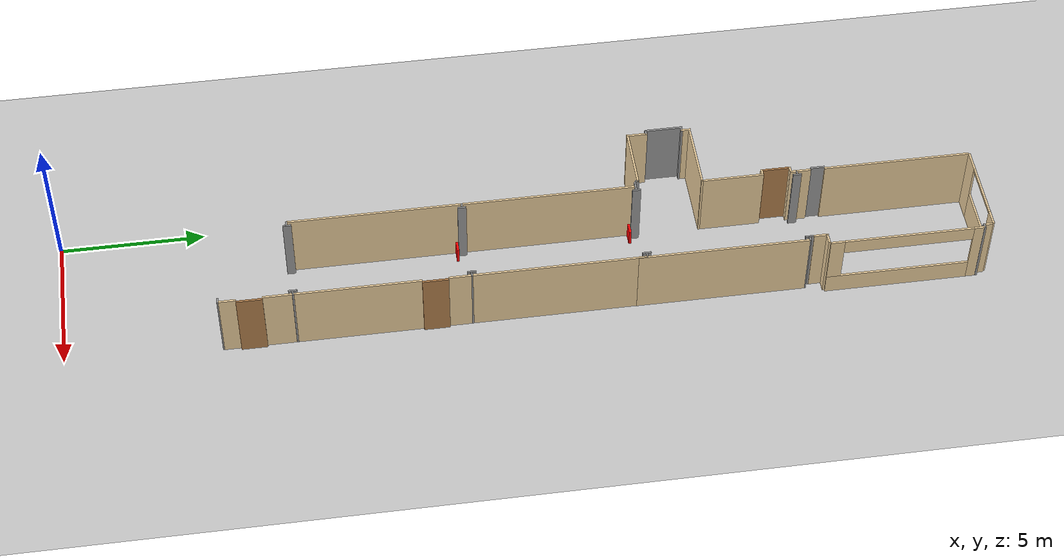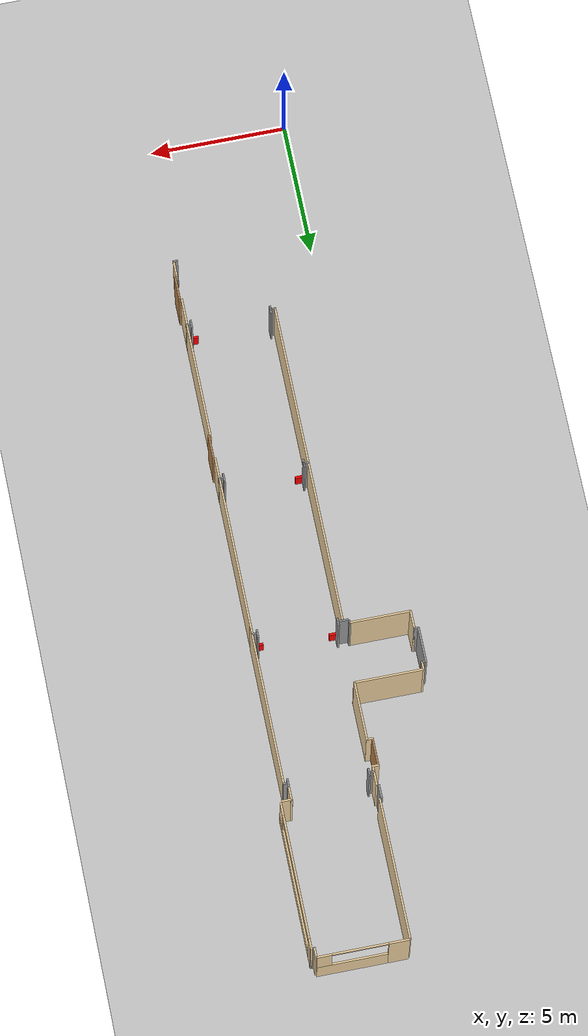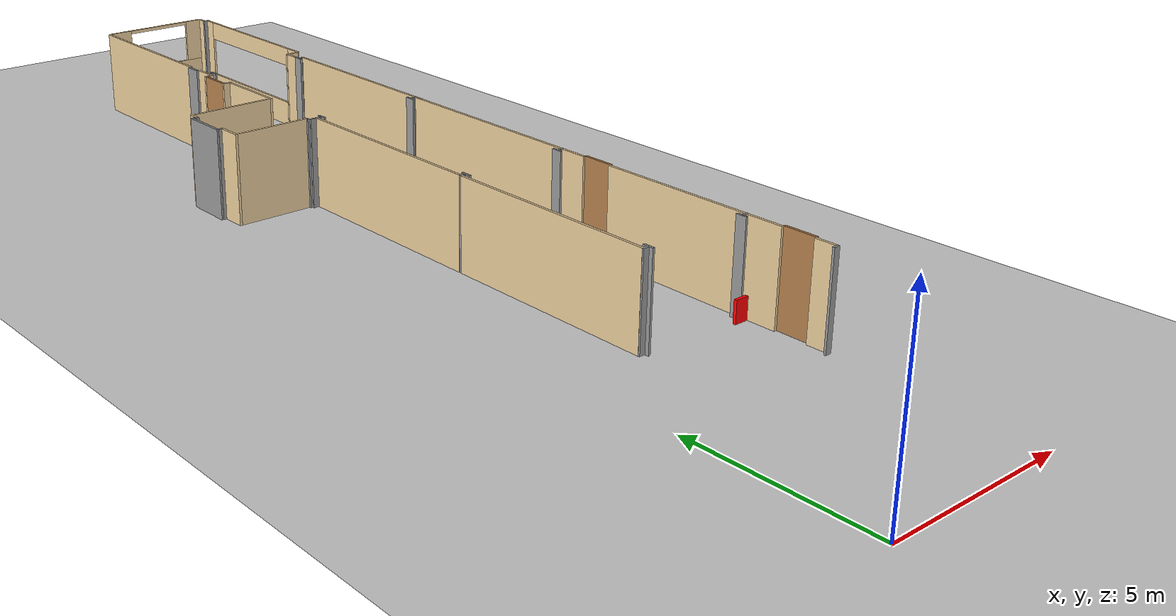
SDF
<sdf version="1.7">
 <world name="default">
  <model name="ground_plane">
   <static>1</static>
   <link name="link">
    <collision name="collision">
     <geometry><plane><normal>0 0 1</normal><size>100 100</size></plane></geometry>
     <surface>
      <contact><collide_bitmask>65535</collide_bitmask></contact>
      <friction><ode><mu>100</mu><mu2>50</mu2></ode></friction>
     </surface>
    </collision>
    <visual name="visual">
     <cast_shadows>0</cast_shadows>
     <geometry><plane><normal>0 0 1</normal><size>100 100</size></plane></geometry>
     <material>
      <script><uri>file://media/materials/scripts/gazebo.material</uri><name>Gazebo/Grey</name></script>
     </material>
    </visual>
   </link>
  </model>
  <model name="Fakulte_koridor">
   <pose>-0.108629 -0.105707 0 0 -0 0</pose>
   <link name="Wall_100">
    <collision name="Wall_100_Collision">
     <geometry><box><size>0.3 0.06 2.5</size></box></geometry>
     <pose>0 0 1.25 0 -0 0</pose>
    </collision>
    <visual name="Wall_100_Visual">
     <pose>0 0 1.25 0 -0 0</pose>
     <geometry><box><size>0.3 0.06 2.5</size></box></geometry>
     <material>
      <script><uri>file://media/materials/scripts/gazebo.material</uri><name>Gazebo/Grey</name></script>
      <ambient>0.180392 0.203922 0.211765 1</ambient>
     </material>
     <meta><layer>0</layer></meta>
    </visual>
    <pose>5.11163 14.0287 0 0 -0 -1.5708</pose>
   </link>
   <link name="Wall_102">
    <collision name="Wall_102_Collision">
     <geometry><box><size>5.965 0.07 2.5</size></box></geometry>
     <pose>0 0 1.25 0 -0 0</pose>
    </collision>
    <visual name="Wall_102_Visual">
     <pose>0 0 1.25 0 -0 0</pose>
     <geometry><box><size>5.965 0.07 2.5</size></box></geometry>
     <material>
      <script><uri>file://media/materials/scripts/gazebo.material</uri><name>Gazebo/Grey</name></script>
      <ambient>0.921569 0.807843 0.615686 1</ambient>
     </material>
     <meta><layer>0</layer></meta>
    </visual>
    <pose>5.27021 17.0333 0 0 -0 -1.5708</pose>
   </link>
   <link name="Wall_104">
    <collision name="Wall_104_Collision">
     <geometry><box><size>0.175 0.06 2.5</size></box></geometry>
     <pose>0 0 1.25 0 -0 0</pose>
    </collision>
    <visual name="Wall_104_Visual">
     <pose>0 0 1.25 0 -0 0</pose>
     <geometry><box><size>0.175 0.06 2.5</size></box></geometry>
     <material>
      <script><uri>file://media/materials/scripts/gazebo.material</uri><name>Gazebo/Grey</name></script>
      <ambient>0.180392 0.203922 0.211765 1</ambient>
     </material>
     <meta><layer>0</layer></meta>
    </visual>
    <pose>5.21005 19.996 0 0 -0 0</pose>
   </link>
   <link name="Wall_106">
    <collision name="Wall_106_Collision">
     <geometry><box><size>0.3 0.06 2.5</size></box></geometry>
     <pose>0 0 1.25 0 -0 0</pose>
    </collision>
    <visual name="Wall_106_Visual">
     <pose>0 0 1.25 0 -0 0</pose>
     <geometry><box><size>0.3 0.06 2.5</size></box></geometry>
     <material>
      <script><uri>file://media/materials/scripts/gazebo.material</uri><name>Gazebo/Grey</name></script>
      <ambient>0.180392 0.203922 0.211765 1</ambient>
     </material>
     <meta><layer>0</layer></meta>
    </visual>
    <pose>5.08827 20.0046 0 0 -0 -1.5708</pose>
   </link>
   <link name="Wall_108">
    <collision name="Wall_108_Collision">
     <geometry><box><size>5.895 0.07 2.5</size></box></geometry>
     <pose>0 0 1.25 0 -0 0</pose>
    </collision>
    <visual name="Wall_108_Visual">
     <pose>0 0 1.25 0 -0 0</pose>
     <geometry><box><size>5.895 0.07 2.5</size></box></geometry>
     <material>
      <script><uri>file://media/materials/scripts/gazebo.material</uri><name>Gazebo/Grey</name></script>
      <ambient>0.921569 0.807843 0.615686 1</ambient>
     </material>
     <meta><layer>0</layer></meta>
    </visual>
    <pose>5.27802 22.6416 0 0 -0 -1.5708</pose>
   </link>
   <link name="Wall_110">
    <collision name="Wall_110_Collision">
     <geometry><box><size>0.175 0.06 2.5</size></box></geometry>
     <pose>0 0 1.25 0 -0 0</pose>
    </collision>
    <visual name="Wall_110_Visual">
     <pose>0 0 1.25 0 -0 0</pose>
     <geometry><box><size>0.175 0.06 2.5</size></box></geometry>
     <material>
      <script><uri>file://media/materials/scripts/gazebo.material</uri><name>Gazebo/Grey</name></script>
      <ambient>0.180392 0.203922 0.211765 1</ambient>
     </material>
     <meta><layer>0</layer></meta>
    </visual>
    <pose>5.21975 25.6028 0 0 -0 0</pose>
   </link>
   <link name="Wall_112">
    <collision name="Wall_112_Collision">
     <geometry><box><size>0.3 0.06 2.5</size></box></geometry>
     <pose>0 0 1.25 0 -0 0</pose>
    </collision>
    <visual name="Wall_112_Visual">
     <pose>0 0 1.25 0 -0 0</pose>
     <geometry><box><size>0.3 0.06 2.5</size></box></geometry>
     <material>
      <script><uri>file://media/materials/scripts/gazebo.material</uri><name>Gazebo/Grey</name></script>
      <ambient>0.180392 0.203922 0.211765 1</ambient>
     </material>
     <meta><layer>0</layer></meta>
    </visual>
    <pose>5.11751 25.6043 0 0 -0 -1.5708</pose>
   </link>
   <link name="Wall_114">
    <collision name="Wall_114_Collision">
     <geometry><box><size>0.505 0.07 2.5</size></box></geometry>
     <pose>0 0 1.25 0 -0 0</pose>
    </collision>
    <visual name="Wall_114_Visual">
     <pose>0 0 1.25 0 -0 0</pose>
     <geometry><box><size>0.505 0.07 2.5</size></box></geometry>
     <material>
      <script><uri>file://media/materials/scripts/gazebo.material</uri><name>Gazebo/Grey</name></script>
      <ambient>0.921569 0.807843 0.615686 1</ambient>
     </material>
     <meta><layer>0</layer></meta>
    </visual>
    <pose>5.1239 26.0091 0 0 -0 -1.5708</pose>
   </link>
   <link name="Wall_118">
    <collision name="Wall_118_Collision">
     <geometry><box><size>0.4 0.07 2.5</size></box></geometry>
     <pose>0 0 1.25 0 -0 0</pose>
    </collision>
    <visual name="Wall_118_Visual">
     <pose>0 0 1.25 0 -0 0</pose>
     <geometry><box><size>0.4 0.07 2.5</size></box></geometry>
     <material>
      <script><uri>file://media/materials/scripts/gazebo.material</uri><name>Gazebo/Grey</name></script>
      <ambient>0.921569 0.807843 0.615686 1</ambient>
     </material>
     <meta><layer>0</layer></meta>
    </visual>
    <pose>5.28591 26.2172 0 0 -0 0</pose>
   </link>
   <link name="Wall_120">
    <pose>5.5144 28.9535 0 0 -0 -1.5708</pose>
    <visual name="Wall_120_Visual_0">
     <pose>-2.49861 0 1.25 0 -0 0</pose>
     <geometry><box><size>0.407786 0.07 2.5</size></box></geometry>
     <material>
      <script><uri>file://media/materials/scripts/gazebo.material</uri><name>Gazebo/Grey</name></script>
      <ambient>0.921569 0.807843 0.615686 1</ambient>
     </material>
     <meta><layer>0</layer></meta>
    </visual>
    <collision name="Wall_120_Collision_0">
     <geometry><box><size>0.407786 0.07 2.5</size></box></geometry>
     <pose>-2.49861 0 1.25 0 -0 0</pose>
    </collision>
    <visual name="Wall_120_Visual_1">
     <pose>0.203893 0 0.375 0 -0 0</pose>
     <geometry><box><size>4.99721 0.07 0.75</size></box></geometry>
     <material>
      <script><uri>file://media/materials/scripts/gazebo.material</uri><name>Gazebo/Grey</name></script>
      <ambient>0.921569 0.807843 0.615686 1</ambient>
     </material>
     <meta><layer>0</layer></meta>
    </visual>
    <collision name="Wall_120_Collision_1">
     <geometry><box><size>4.99721 0.07 0.75</size></box></geometry>
     <pose>0.203893 0 0.375 0 -0 0</pose>
    </collision>
    <visual name="Wall_120_Visual_2">
     <pose>2.45389 0 1.625 0 -0 0</pose>
     <geometry><box><size>0.497214 0.07 1.75</size></box></geometry>
     <material>
      <script><uri>file://media/materials/scripts/gazebo.material</uri><name>Gazebo/Grey</name></script>
      <ambient>0.921569 0.807843 0.615686 1</ambient>
     </material>
     <meta><layer>0</layer></meta>
    </visual>
    <collision name="Wall_120_Collision_2">
     <geometry><box><size>0.497214 0.07 1.75</size></box></geometry>
     <pose>2.45389 0 1.625 0 -0 0</pose>
    </collision>
    <visual name="Wall_120_Visual_3">
     <pose>-0.044714 0 2.225 0 -0 0</pose>
     <geometry><box><size>4.5 0.07 0.55</size></box></geometry>
     <material>
      <script><uri>file://media/materials/scripts/gazebo.material</uri><name>Gazebo/Grey</name></script>
      <ambient>0.921569 0.807843 0.615686 1</ambient>
     </material>
     <meta><layer>0</layer></meta>
    </visual>
    <collision name="Wall_120_Collision_3">
     <geometry><box><size>4.5 0.07 0.55</size></box></geometry>
     <pose>-0.044714 0 2.225 0 -0 0</pose>
    </collision>
   </link>
   <link name="Wall_122">
    <collision name="Wall_122_Collision">
     <geometry><box><size>0.195 0.07 2.5</size></box></geometry>
     <pose>0 0 1.25 0 -0 0</pose>
    </collision>
    <visual name="Wall_122_Visual">
     <pose>0 0 1.25 0 -0 0</pose>
     <geometry><box><size>0.195 0.07 2.5</size></box></geometry>
     <material>
      <script><uri>file://media/materials/scripts/gazebo.material</uri><name>Gazebo/Grey</name></script>
      <ambient>1 1 1 1</ambient>
     </material>
     <meta><layer>0</layer></meta>
    </visual>
    <pose>5.4612 31.621 0 0 -0 0</pose>
   </link>
   <link name="Wall_124">
    <collision name="Wall_124_Collision">
     <geometry><box><size>0.32 0.07 2.5</size></box></geometry>
     <pose>0 0 1.25 0 -0 0</pose>
    </collision>
    <visual name="Wall_124_Visual">
     <pose>0 0 1.25 0 -0 0</pose>
     <geometry><box><size>0.32 0.07 2.5</size></box></geometry>
     <material>
      <script><uri>file://media/materials/scripts/gazebo.material</uri><name>Gazebo/Grey</name></script>
      <ambient>0.921569 0.807843 0.615686 1</ambient>
     </material>
     <meta><layer>0</layer></meta>
    </visual>
    <pose>5.40314 31.7556 0 0 -0 -1.5708</pose>
   </link>
   <link name="Wall_126">
    <pose>3.74779 31.9519 0 0 -0 0</pose>
    <visual name="Wall_126_Visual_0">
     <pose>-1.26795 0 1.25 0 -0 0</pose>
     <geometry><box><size>0.743101 0.07 2.5</size></box></geometry>
     <material>
      <script><uri>file://media/materials/scripts/gazebo.material</uri><name>Gazebo/Grey</name></script>
      <ambient>0.921569 0.807843 0.615686 1</ambient>
     </material>
     <meta><layer>0</layer></meta>
    </visual>
    <collision name="Wall_126_Collision_0">
     <geometry><box><size>0.743101 0.07 2.5</size></box></geometry>
     <pose>-1.26795 0 1.25 0 -0 0</pose>
    </collision>
    <visual name="Wall_126_Visual_1">
     <pose>0.37155 0 0.6 0 -0 0</pose>
     <geometry><box><size>2.5359 0.07 1.2</size></box></geometry>
     <material>
      <script><uri>file://media/materials/scripts/gazebo.material</uri><name>Gazebo/Grey</name></script>
      <ambient>0.921569 0.807843 0.615686 1</ambient>
     </material>
     <meta><layer>0</layer></meta>
    </visual>
    <collision name="Wall_126_Collision_1">
     <geometry><box><size>2.5359 0.07 1.2</size></box></geometry>
     <pose>0.37155 0 0.6 0 -0 0</pose>
    </collision>
    <visual name="Wall_126_Visual_2">
     <pose>1.37155 0 1.85 0 -0 0</pose>
     <geometry><box><size>0.535899 0.07 1.3</size></box></geometry>
     <material>
      <script><uri>file://media/materials/scripts/gazebo.material</uri><name>Gazebo/Grey</name></script>
      <ambient>0.921569 0.807843 0.615686 1</ambient>
     </material>
     <meta><layer>0</layer></meta>
    </visual>
    <collision name="Wall_126_Collision_2">
     <geometry><box><size>0.535899 0.07 1.3</size></box></geometry>
     <pose>1.37155 0 1.85 0 -0 0</pose>
    </collision>
    <visual name="Wall_126_Visual_3">
     <pose>0.103601 0 2.45 0 -0 0</pose>
     <geometry><box><size>2 0.07 0.1</size></box></geometry>
     <material>
      <script><uri>file://media/materials/scripts/gazebo.material</uri><name>Gazebo/Grey</name></script>
      <ambient>0.921569 0.807843 0.615686 1</ambient>
     </material>
     <meta><layer>0</layer></meta>
    </visual>
    <collision name="Wall_126_Collision_3">
     <geometry><box><size>2 0.07 0.1</size></box></geometry>
     <pose>0.103601 0 2.45 0 -0 0</pose>
    </collision>
   </link>
   <link name="Wall_128">
    <collision name="Wall_128_Collision">
     <geometry><box><size>5.145 0.07 2.5</size></box></geometry>
     <pose>0 0 1.25 0 -0 0</pose>
    </collision>
    <visual name="Wall_128_Visual">
     <pose>0 0 1.25 0 -0 0</pose>
     <geometry><box><size>5.145 0.07 2.5</size></box></geometry>
     <material>
      <script><uri>file://media/materials/scripts/gazebo.material</uri><name>Gazebo/Grey</name></script>
      <ambient>0.921569 0.807843 0.615686 1</ambient>
     </material>
     <meta><layer>0</layer></meta>
    </visual>
    <pose>2.09688 29.3576 0 0 -0 -1.5708</pose>
   </link>
   <link name="Wall_130">
    <collision name="Wall_130_Collision">
     <geometry><box><size>0.495 0.07 2.5</size></box></geometry>
     <pose>0 0 1.25 0 -0 0</pose>
    </collision>
    <visual name="Wall_130_Visual">
     <pose>0 0 1.25 0 -0 0</pose>
     <geometry><box><size>0.495 0.07 2.5</size></box></geometry>
     <material>
      <script><uri>file://media/materials/scripts/gazebo.material</uri><name>Gazebo/Grey</name></script>
      <ambient>0.729412 0.741176 0.713726 1</ambient>
     </material>
     <meta><layer>0</layer></meta>
    </visual>
    <pose>2.03085 26.5424 0 0 -0 -1.5708</pose>
   </link>
   <link name="Wall_132">
    <collision name="Wall_132_Collision">
     <geometry><box><size>0.745 0.07 2.5</size></box></geometry>
     <pose>0 0 1.25 0 -0 0</pose>
    </collision>
    <visual name="Wall_132_Visual">
     <pose>0 0 1.25 0 -0 0</pose>
     <geometry><box><size>0.745 0.07 2.5</size></box></geometry>
     <material>
      <script><uri>file://media/materials/scripts/gazebo.material</uri><name>Gazebo/Grey</name></script>
      <ambient>0.921569 0.807843 0.615686 1</ambient>
     </material>
     <meta><layer>0</layer></meta>
    </visual>
    <pose>2.09827 25.9291 0 0 -0 -1.5708</pose>
   </link>
   <link name="Wall_134">
    <collision name="Wall_134_Collision">
     <geometry><box><size>0.175 0.06 2.5</size></box></geometry>
     <pose>0 0 1.25 0 -0 0</pose>
    </collision>
    <visual name="Wall_134_Visual">
     <pose>0 0 1.25 0 -0 0</pose>
     <geometry><box><size>0.175 0.06 2.5</size></box></geometry>
     <material>
      <script><uri>file://media/materials/scripts/gazebo.material</uri><name>Gazebo/Grey</name></script>
      <ambient>0.180392 0.203922 0.211765 1</ambient>
     </material>
     <meta><layer>0</layer></meta>
    </visual>
    <pose>2.15167 25.7938 0 0 -0 0</pose>
   </link>
   <link name="Wall_136">
    <collision name="Wall_136_Collision">
     <geometry><box><size>0.3 0.06 2.5</size></box></geometry>
     <pose>0 0 1.25 0 -0 0</pose>
    </collision>
    <visual name="Wall_136_Visual">
     <pose>0 0 1.25 0 -0 0</pose>
     <geometry><box><size>0.3 0.06 2.5</size></box></geometry>
     <material>
      <script><uri>file://media/materials/scripts/gazebo.material</uri><name>Gazebo/Grey</name></script>
      <ambient>0.180392 0.203922 0.211765 1</ambient>
     </material>
     <meta><layer>0</layer></meta>
    </visual>
    <pose>2.268 25.7827 0 0 -0 -1.5708</pose>
   </link>
   <link name="Wall_138">
    <collision name="Wall_138_Collision">
     <geometry><box><size>0.262 0.07 2.5</size></box></geometry>
     <pose>0 0 1.25 0 -0 0</pose>
    </collision>
    <visual name="Wall_138_Visual">
     <pose>0 0 1.25 0 -0 0</pose>
     <geometry><box><size>0.262 0.07 2.5</size></box></geometry>
     <material>
      <script><uri>file://media/materials/scripts/gazebo.material</uri><name>Gazebo/Grey</name></script>
      <ambient>0.921569 0.807843 0.615686 1</ambient>
     </material>
     <meta><layer>0</layer></meta>
    </visual>
    <pose>2.00137 25.5882 0 0 -0 3.14159</pose>
   </link>
   <link name="Wall_140">
    <collision name="Wall_140_Collision">
     <geometry><box><size>0.933 0.07 2.5</size></box></geometry>
     <pose>0 0 1.25 0 -0 0</pose>
    </collision>
    <visual name="Wall_140_Visual">
     <pose>0 0 1.25 0 -0 0</pose>
     <geometry><box><size>0.933 0.07 2.5</size></box></geometry>
     <material>
      <script><uri>file://media/materials/scripts/gazebo.material</uri><name>Gazebo/Wood</name></script>
      <ambient>1 1 1 1</ambient>
     </material>
     <meta><layer>0</layer></meta>
    </visual>
    <pose>1.90607 25.0907 0 0 -0 -1.5708</pose>
   </link>
   <link name="Wall_142">
    <collision name="Wall_142_Collision">
     <geometry><box><size>0.262 0.07 2.5</size></box></geometry>
     <pose>0 0 1.25 0 -0 0</pose>
    </collision>
    <visual name="Wall_142_Visual">
     <pose>0 0 1.25 0 -0 0</pose>
     <geometry><box><size>0.262 0.07 2.5</size></box></geometry>
     <material>
      <script><uri>file://media/materials/scripts/gazebo.material</uri><name>Gazebo/Grey</name></script>
      <ambient>0.921569 0.807843 0.615686 1</ambient>
     </material>
     <meta><layer>0</layer></meta>
    </visual>
    <pose>2.00059 24.593 0 0 -0 0</pose>
   </link>
   <link name="Wall_144">
    <collision name="Wall_144_Collision">
     <geometry><box><size>2.203 0.07 2.5</size></box></geometry>
     <pose>0 0 1.25 0 -0 0</pose>
    </collision>
    <visual name="Wall_144_Visual">
     <pose>0 0 1.25 0 -0 0</pose>
     <geometry><box><size>2.203 0.07 2.5</size></box></geometry>
     <material>
      <script><uri>file://media/materials/scripts/gazebo.material</uri><name>Gazebo/Grey</name></script>
      <ambient>0.921569 0.807843 0.615686 1</ambient>
     </material>
     <meta><layer>0</layer></meta>
    </visual>
    <pose>2.09965 23.523 0 0 -0 -1.5708</pose>
   </link>
   <link name="Wall_146">
    <collision name="Wall_146_Collision">
     <geometry><box><size>2.483 0.07 2.5</size></box></geometry>
     <pose>0 0 1.25 0 -0 0</pose>
    </collision>
    <visual name="Wall_146_Visual">
     <pose>0 0 1.25 0 -0 0</pose>
     <geometry><box><size>2.483 0.07 2.5</size></box></geometry>
     <material>
      <script><uri>file://media/materials/scripts/gazebo.material</uri><name>Gazebo/Grey</name></script>
      <ambient>0.921569 0.807843 0.615686 1</ambient>
     </material>
     <meta><layer>0</layer></meta>
    </visual>
    <pose>0.894313 22.4573 0 0 -0 0</pose>
   </link>
   <link name="Wall_148">
    <collision name="Wall_148_Collision">
     <geometry><box><size>0.345 0.07 2.5</size></box></geometry>
     <pose>0 0 1.25 0 -0 0</pose>
    </collision>
    <visual name="Wall_148_Visual">
     <pose>0 0 1.25 0 -0 0</pose>
     <geometry><box><size>0.345 0.07 2.5</size></box></geometry>
     <material>
      <script><uri>file://media/materials/scripts/gazebo.material</uri><name>Gazebo/Grey</name></script>
      <ambient>0.921569 0.807843 0.615686 1</ambient>
     </material>
     <meta><layer>0</layer></meta>
    </visual>
    <pose>-0.377773 22.3219 0 0 -0 -1.5708</pose>
   </link>
   <link name="Wall_150">
    <collision name="Wall_150_Collision">
     <geometry><box><size>0.153 0.07 2.5</size></box></geometry>
     <pose>0 0 1.25 0 -0 0</pose>
    </collision>
    <visual name="Wall_150_Visual">
     <pose>0 0 1.25 0 -0 0</pose>
     <geometry><box><size>0.153 0.07 2.5</size></box></geometry>
     <material>
      <script><uri>file://media/materials/scripts/gazebo.material</uri><name>Gazebo/Grey</name></script>
      <ambient>0.533333 0.541176 0.521569 1</ambient>
     </material>
     <meta><layer>0</layer></meta>
    </visual>
    <pose>-0.413524 22.1834 0 0 -0 3.14159</pose>
   </link>
   <link name="Wall_152">
    <collision name="Wall_152_Collision">
     <geometry><box><size>1.338 0.07 2.5</size></box></geometry>
     <pose>0 0 1.25 0 -0 0</pose>
    </collision>
    <visual name="Wall_152_Visual">
     <pose>0 0 1.25 0 -0 0</pose>
     <geometry><box><size>1.338 0.07 2.5</size></box></geometry>
     <material>
      <script><uri>file://media/materials/scripts/gazebo.material</uri><name>Gazebo/Grey</name></script>
      <ambient>0.533333 0.541176 0.521569 1</ambient>
     </material>
     <meta><layer>0</layer></meta>
    </visual>
    <pose>-0.516682 21.5521 0 0 -0 -1.5708</pose>
   </link>
   <link name="Wall_154">
    <collision name="Wall_154_Collision">
     <geometry><box><size>0.153 0.07 2.5</size></box></geometry>
     <pose>0 0 1.25 0 -0 0</pose>
    </collision>
    <visual name="Wall_154_Visual">
     <pose>0 0 1.25 0 -0 0</pose>
     <geometry><box><size>0.153 0.07 2.5</size></box></geometry>
     <material>
      <script><uri>file://media/materials/scripts/gazebo.material</uri><name>Gazebo/Grey</name></script>
      <ambient>0.533333 0.541176 0.521569 1</ambient>
     </material>
     <meta><layer>0</layer></meta>
    </visual>
    <pose>-0.421701 20.9154 0 0 -0 0</pose>
   </link>
   <link name="Wall_156">
    <collision name="Wall_156_Collision">
     <geometry><box><size>0.738 0.07 2.5</size></box></geometry>
     <pose>0 0 1.25 0 -0 0</pose>
    </collision>
    <visual name="Wall_156_Visual">
     <pose>0 0 1.25 0 -0 0</pose>
     <geometry><box><size>0.738 0.07 2.5</size></box></geometry>
     <material>
      <script><uri>file://media/materials/scripts/gazebo.material</uri><name>Gazebo/Grey</name></script>
      <ambient>0.921569 0.807843 0.615686 1</ambient>
     </material>
     <meta><layer>0</layer></meta>
    </visual>
    <pose>-0.371379 20.5814 0 0 -0 -1.5708</pose>
   </link>
   <link name="Wall_158">
    <collision name="Wall_158_Collision">
     <geometry><box><size>2.19 0.07 2.5</size></box></geometry>
     <pose>0 0 1.25 0 -0 0</pose>
    </collision>
    <visual name="Wall_158_Visual">
     <pose>0 0 1.25 0 -0 0</pose>
     <geometry><box><size>2.19 0.07 2.5</size></box></geometry>
     <material>
      <script><uri>file://media/materials/scripts/gazebo.material</uri><name>Gazebo/Grey</name></script>
      <ambient>0.921569 0.807843 0.615686 1</ambient>
     </material>
     <meta><layer>0</layer></meta>
    </visual>
    <pose>0.740321 20.2486 0 0 -0 0</pose>
   </link>
   <link name="Wall_160">
    <collision name="Wall_160_Collision">
     <geometry><box><size>0.13 0.06 2.5</size></box></geometry>
     <pose>0 0 1.25 0 -0 0</pose>
    </collision>
    <visual name="Wall_160_Visual">
     <pose>0 0 1.25 0 -0 0</pose>
     <geometry><box><size>0.13 0.06 2.5</size></box></geometry>
     <material>
      <script><uri>file://media/materials/scripts/gazebo.material</uri><name>Gazebo/Grey</name></script>
      <ambient>0.180392 0.203922 0.211765 1</ambient>
     </material>
     <meta><layer>0</layer></meta>
    </visual>
    <pose>1.81046 20.2205 0 0 -0 -1.5708</pose>
   </link>
   <link name="Wall_162">
    <collision name="Wall_162_Collision">
     <geometry><box><size>0.35 0.06 2.5</size></box></geometry>
     <pose>0 0 1.25 0 -0 0</pose>
    </collision>
    <visual name="Wall_162_Visual">
     <pose>0 0 1.25 0 -0 0</pose>
     <geometry><box><size>0.35 0.06 2.5</size></box></geometry>
     <material>
      <script><uri>file://media/materials/scripts/gazebo.material</uri><name>Gazebo/Grey</name></script>
      <ambient>0.180392 0.203922 0.211765 1</ambient>
     </material>
     <meta><layer>0</layer></meta>
    </visual>
    <pose>2.01991 20.1265 0 0 -0 0</pose>
   </link>
   <link name="Wall_164">
    <collision name="Wall_164_Collision">
     <geometry><box><size>0.3 0.06 2.5</size></box></geometry>
     <pose>0 0 1.25 0 -0 0</pose>
    </collision>
    <visual name="Wall_164_Visual">
     <pose>0 0 1.25 0 -0 0</pose>
     <geometry><box><size>0.3 0.06 2.5</size></box></geometry>
     <material>
      <script><uri>file://media/materials/scripts/gazebo.material</uri><name>Gazebo/Grey</name></script>
      <ambient>0.180392 0.203922 0.211765 1</ambient>
     </material>
     <meta><layer>0</layer></meta>
    </visual>
    <pose>2.22081 20.1358 0 0 -0 -1.5708</pose>
   </link>
   <link name="Wall_166">
    <collision name="Wall_166_Collision">
     <geometry><box><size>5.995 0.07 2.5</size></box></geometry>
     <pose>0 0 1.25 0 -0 0</pose>
    </collision>
    <visual name="Wall_166_Visual">
     <pose>0 0 1.25 0 -0 0</pose>
     <geometry><box><size>5.995 0.07 2.5</size></box></geometry>
     <material>
      <script><uri>file://media/materials/scripts/gazebo.material</uri><name>Gazebo/Grey</name></script>
      <ambient>0.921569 0.807843 0.615686 1</ambient>
     </material>
     <meta><layer>0</layer></meta>
    </visual>
    <pose>2.04763 17.0972 0 0 -0 -1.5708</pose>
   </link>
   <link name="Wall_168">
    <collision name="Wall_168_Collision">
     <geometry><box><size>0.175 0.06 2.5</size></box></geometry>
     <pose>0 0 1.25 0 -0 0</pose>
    </collision>
    <visual name="Wall_168_Visual">
     <pose>0 0 1.25 0 -0 0</pose>
     <geometry><box><size>0.175 0.06 2.5</size></box></geometry>
     <material>
      <script><uri>file://media/materials/scripts/gazebo.material</uri><name>Gazebo/Grey</name></script>
      <ambient>0.180392 0.203922 0.211765 1</ambient>
     </material>
     <meta><layer>0</layer></meta>
    </visual>
    <pose>2.10611 14.0679 0 0 -0 0</pose>
   </link>
   <link name="Wall_170">
    <collision name="Wall_170_Collision">
     <geometry><box><size>0.3 0.06 2.5</size></box></geometry>
     <pose>0 0 1.25 0 -0 0</pose>
    </collision>
    <visual name="Wall_170_Visual">
     <pose>0 0 1.25 0 -0 0</pose>
     <geometry><box><size>0.3 0.06 2.5</size></box></geometry>
     <material>
      <script><uri>file://media/materials/scripts/gazebo.material</uri><name>Gazebo/Grey</name></script>
      <ambient>0.180392 0.203922 0.211765 1</ambient>
     </material>
     <meta><layer>0</layer></meta>
    </visual>
    <pose>2.20124 14.0542 0 0 -0 -1.5708</pose>
   </link>
   <link name="Wall_172">
    <collision name="Wall_172_Collision">
     <geometry><box><size>5.995 0.07 2.5</size></box></geometry>
     <pose>0 0 1.25 0 -0 0</pose>
    </collision>
    <visual name="Wall_172_Visual">
     <pose>0 0 1.25 0 -0 0</pose>
     <geometry><box><size>5.995 0.07 2.5</size></box></geometry>
     <material>
      <script><uri>file://media/materials/scripts/gazebo.material</uri><name>Gazebo/Grey</name></script>
      <ambient>0.921569 0.807843 0.615686 1</ambient>
     </material>
     <meta><layer>0</layer></meta>
    </visual>
    <pose>2.04763 11.0372 0 0 -0 -1.5708</pose>
   </link>
   <link name="Wall_174">
    <collision name="Wall_174_Collision">
     <geometry><box><size>0.175 0.06 2.5</size></box></geometry>
     <pose>0 0 1.25 0 -0 0</pose>
    </collision>
    <visual name="Wall_174_Visual">
     <pose>0 0 1.25 0 -0 0</pose>
     <geometry><box><size>0.175 0.06 2.5</size></box></geometry>
     <material>
      <script><uri>file://media/materials/scripts/gazebo.material</uri><name>Gazebo/Grey</name></script>
      <ambient>0.180392 0.203922 0.211765 1</ambient>
     </material>
     <meta><layer>0</layer></meta>
    </visual>
    <pose>2.10606 8.02576 0 0 -0 0</pose>
   </link>
   <link name="Wall_176">
    <collision name="Wall_176_Collision">
     <geometry><box><size>0.3 0.06 2.5</size></box></geometry>
     <pose>0 0 1.25 0 -0 0</pose>
    </collision>
    <visual name="Wall_176_Visual">
     <pose>0 0 1.25 0 -0 0</pose>
     <geometry><box><size>0.3 0.06 2.5</size></box></geometry>
     <material>
      <script><uri>file://media/materials/scripts/gazebo.material</uri><name>Gazebo/Grey</name></script>
      <ambient>0.180392 0.203922 0.211765 1</ambient>
     </material>
     <meta><layer>0</layer></meta>
    </visual>
    <pose>2.2092 8.04168 0 0 -0 -1.5708</pose>
   </link>
   <link name="Wall_74">
    <collision name="Wall_74_Collision">
     <geometry><box><size>0.175 0.06 2.5</size></box></geometry>
     <pose>0 0 1.25 0 -0 0</pose>
    </collision>
    <visual name="Wall_74_Visual">
     <pose>0 0 1.25 0 -0 0</pose>
     <geometry><box><size>0.175 0.06 2.5</size></box></geometry>
     <material>
      <script><uri>file://media/materials/scripts/gazebo.material</uri><name>Gazebo/Grey</name></script>
      <ambient>0.180392 0.203922 0.211765 1</ambient>
     </material>
     <meta><layer>0</layer></meta>
    </visual>
    <pose>5.21531 5.50654 0 0 -0 0</pose>
   </link>
   <link name="Wall_78">
    <collision name="Wall_78_Collision">
     <geometry><box><size>0.578 0.07 2.5</size></box></geometry>
     <pose>0 0 1.25 0 -0 0</pose>
    </collision>
    <visual name="Wall_78_Visual">
     <pose>0 0 1.25 0 -0 0</pose>
     <geometry><box><size>0.578 0.07 2.5</size></box></geometry>
     <material>
      <script><uri>file://media/materials/scripts/gazebo.material</uri><name>Gazebo/Grey</name></script>
      <ambient>0.921569 0.807843 0.615686 1</ambient>
     </material>
     <meta><layer>0</layer></meta>
    </visual>
    <pose>5.27902 5.81562 0 0 -0 -1.5708</pose>
   </link>
   <link name="Wall_82">
    <collision name="Wall_82_Collision">
     <geometry><box><size>0.895 0.07 2.5</size></box></geometry>
     <pose>0 0 1.25 0 -0 0</pose>
    </collision>
    <visual name="Wall_82_Visual">
     <pose>0 0 1.25 0 -0 0</pose>
     <geometry><box><size>0.895 0.07 2.5</size></box></geometry>
     <material>
      <script><uri>file://media/materials/scripts/gazebo.material</uri><name>Gazebo/Wood</name></script>
      <ambient>1 1 1 1</ambient>
     </material>
     <meta><layer>0</layer></meta>
    </visual>
    <pose>5.34929 6.54897 0 0 -0 -1.5708</pose>
   </link>
   <link name="Wall_84">
    <collision name="Wall_84_Collision">
     <geometry><box><size>0.995 0.07 2.5</size></box></geometry>
     <pose>0 0 1.25 0 -0 0</pose>
    </collision>
    <visual name="Wall_84_Visual">
     <pose>0 0 1.25 0 -0 0</pose>
     <geometry><box><size>0.995 0.07 2.5</size></box></geometry>
     <material>
      <script><uri>file://media/materials/scripts/gazebo.material</uri><name>Gazebo/Grey</name></script>
      <ambient>0.921569 0.807843 0.615686 1</ambient>
     </material>
     <meta><layer>0</layer></meta>
    </visual>
    <pose>5.27534 7.48975 0 0 -0 -1.5708</pose>
   </link>
   <link name="Wall_86">
    <collision name="Wall_86_Collision">
     <geometry><box><size>0.175 0.06 2.5</size></box></geometry>
     <pose>0 0 1.25 0 -0 0</pose>
    </collision>
    <visual name="Wall_86_Visual">
     <pose>0 0 1.25 0 -0 0</pose>
     <geometry><box><size>0.175 0.06 2.5</size></box></geometry>
     <material>
      <script><uri>file://media/materials/scripts/gazebo.material</uri><name>Gazebo/Grey</name></script>
      <ambient>0.180392 0.203922 0.211765 1</ambient>
     </material>
     <meta><layer>0</layer></meta>
    </visual>
    <pose>5.22991 8.02009 0 0 -0 0</pose>
   </link>
   <link name="Wall_88">
    <collision name="Wall_88_Collision">
     <geometry><box><size>0.3 0.06 2.5</size></box></geometry>
     <pose>0 0 1.25 0 -0 0</pose>
    </collision>
    <visual name="Wall_88_Visual">
     <pose>0 0 1.25 0 -0 0</pose>
     <geometry><box><size>0.3 0.06 2.5</size></box></geometry>
     <material>
      <script><uri>file://media/materials/scripts/gazebo.material</uri><name>Gazebo/Grey</name></script>
      <ambient>0.180392 0.203922 0.211765 1</ambient>
     </material>
     <meta><layer>0</layer></meta>
    </visual>
    <pose>5.12404 8.01819 0 0 -0 -1.5708</pose>
   </link>
   <link name="Wall_92">
    <collision name="Wall_92_Collision">
     <geometry><box><size>4.315 0.07 2.5</size></box></geometry>
     <pose>0 0 1.25 0 -0 0</pose>
    </collision>
    <visual name="Wall_92_Visual">
     <pose>0 0 1.25 0 -0 0</pose>
     <geometry><box><size>4.315 0.07 2.5</size></box></geometry>
     <material>
      <script><uri>file://media/materials/scripts/gazebo.material</uri><name>Gazebo/Grey</name></script>
      <ambient>0.921569 0.807843 0.615686 1</ambient>
     </material>
     <meta><layer>0</layer></meta>
    </visual>
    <pose>5.27563 10.1832 0 0 -0 -1.5708</pose>
   </link>
   <link name="Wall_94">
    <collision name="Wall_94_Collision">
     <geometry><box><size>0.895 0.07 2.5</size></box></geometry>
     <pose>0 0 1.25 0 -0 0</pose>
    </collision>
    <visual name="Wall_94_Visual">
     <pose>0 0 1.25 0 -0 0</pose>
     <geometry><box><size>0.895 0.07 2.5</size></box></geometry>
     <material>
      <script><uri>file://media/materials/scripts/gazebo.material</uri><name>Gazebo/Wood</name></script>
      <ambient>1 1 1 1</ambient>
     </material>
     <meta><layer>0</layer></meta>
    </visual>
    <pose>5.33738 12.7867 0 0 -0 -1.5708</pose>
   </link>
   <link name="Wall_96">
    <collision name="Wall_96_Collision">
     <geometry><box><size>0.775 0.07 2.5</size></box></geometry>
     <pose>0 0 1.25 0 -0 0</pose>
    </collision>
    <visual name="Wall_96_Visual">
     <pose>0 0 1.25 0 -0 0</pose>
     <geometry><box><size>0.775 0.07 2.5</size></box></geometry>
     <material>
      <script><uri>file://media/materials/scripts/gazebo.material</uri><name>Gazebo/Grey</name></script>
      <ambient>0.921569 0.807843 0.615686 1</ambient>
     </material>
     <meta><layer>0</layer></meta>
    </visual>
    <pose>5.27592 13.6163 0 0 -0 -1.5708</pose>
   </link>
   <link name="Wall_98">
    <collision name="Wall_98_Collision">
     <geometry><box><size>0.175 0.06 2.5</size></box></geometry>
     <pose>0 0 1.25 0 -0 0</pose>
    </collision>
    <visual name="Wall_98_Visual">
     <pose>0 0 1.25 0 -0 0</pose>
     <geometry><box><size>0.175 0.06 2.5</size></box></geometry>
     <material>
      <script><uri>file://media/materials/scripts/gazebo.material</uri><name>Gazebo/Grey</name></script>
      <ambient>0.180392 0.203922 0.211765 1</ambient>
     </material>
     <meta><layer>0</layer></meta>
    </visual>
    <pose>5.22313 14.0267 0 0 -0 0</pose>
   </link>
   <static>1</static>
  </model>
  <model name="feature_kutu1">
   <static>1</static>
   <link name="link">
    <inertial>
     <mass>1</mass>
     <inertia><ixx>0.083</ixx><ixy>0</ixy><ixz>0</ixz><iyy>0.083</iyy><iyz>0</iyz><izz>0.083</izz></inertia>
    </inertial>
    <collision name="collision"><geometry><box><size>0.385 0.085 0.6</size></box></geometry></collision>
    <visual name="visual">
     <geometry><box><size>0.385 0.085 0.6</size></box></geometry>
     <material>
      <ambient>1 0 0 1</ambient>
      <diffuse>1 0 0 1</diffuse>
      <specular>0.1 0.1 0.1 1</specular>
      <emissive>0 0 0 0</emissive>
     </material>
    </visual>
    <sensor name="my_contact" type="contact">
     <contact><collision>box_collision</collision><topic>__default_topic__</topic></contact>
    </sensor>
   </link>
   <pose>4.93 19.7 0.3 0 -0 0</pose>
  </model>
  <model name="feature_kutu1_clone">
   <static>1</static>
   <link name="link">
    <inertial>
     <mass>1</mass>
     <inertia><ixx>0.083</ixx><ixy>0</ixy><ixz>0</ixz><iyy>0.083</iyy><iyz>0</iyz><izz>0.083</izz></inertia>
    </inertial>
    <collision name="collision"><geometry><box><size>0.385 0.085 0.6</size></box></geometry></collision>
    <visual name="visual">
     <geometry><box><size>0.385 0.085 0.6</size></box></geometry>
     <material>
      <ambient>1 0 0 1</ambient>
      <diffuse>1 0 0 1</diffuse>
      <specular>0.1 0.1 0.1 1</specular>
      <emissive>0 0 0 0</emissive>
     </material>
    </visual>
    <sensor name="my_contact" type="contact">
     <contact><collision>box_collision</collision><topic>__default_topic__</topic></contact>
    </sensor>
   </link>
   <pose>2.17845 19.83 0.3 0 -0 0</pose>
  </model>
  <model name="feature_kutu1_clone_0">
   <static>1</static>
   <link name="link">
    <inertial>
     <mass>1</mass>
     <inertia><ixx>0.083</ixx><ixy>0</ixy><ixz>0</ixz><iyy>0.083</iyy><iyz>0</iyz><izz>0.083</izz></inertia>
    </inertial>
    <collision name="collision"><geometry><box><size>0.385 0.085 0.6</size></box></geometry></collision>
    <visual name="visual">
     <geometry><box><size>0.385 0.085 0.6</size></box></geometry>
     <material>
      <ambient>1 0 0 1</ambient>
      <diffuse>1 0 0 1</diffuse>
      <specular>0.1 0.1 0.1 1</specular>
      <emissive>0 0 0 0</emissive>
     </material>
    </visual>
    <sensor name="my_contact" type="contact">
     <contact><collision>box_collision</collision><topic>__default_topic__</topic></contact>
    </sensor>
   </link>
   <pose>2.17845 13.75 0.3 0 -0 0</pose>
  </model>
  <model name="feature_kutu1_clone_1">
   <static>1</static>
   <link name="link">
    <inertial>
     <mass>1</mass>
     <inertia><ixx>0.083</ixx><ixy>0</ixy><ixz>0</ixz><iyy>0.083</iyy><iyz>0</iyz><izz>0.083</izz></inertia>
    </inertial>
    <collision name="collision"><geometry><box><size>0.385 0.085 0.6</size></box></geometry></collision>
    <visual name="visual">
     <geometry><box><size>0.385 0.085 0.6</size></box></geometry>
     <material>
      <ambient>1 0 0 1</ambient>
      <diffuse>1 0 0 1</diffuse>
      <specular>0.1 0.1 0.1 1</specular>
      <emissive>0 0 0 0</emissive>
     </material>
    </visual>
    <sensor name="my_contact" type="contact">
     <contact><collision>box_collision</collision><topic>__default_topic__</topic></contact>
    </sensor>
   </link>
   <pose>4.92826 7.70991 0.3 0 -0 0</pose>
  </model>
 </world>
</sdf>
